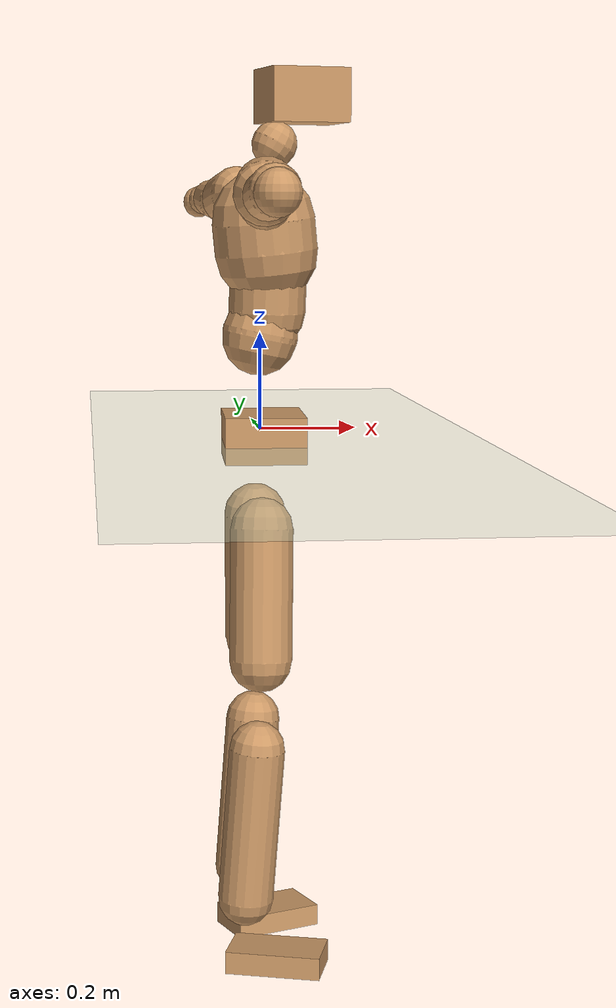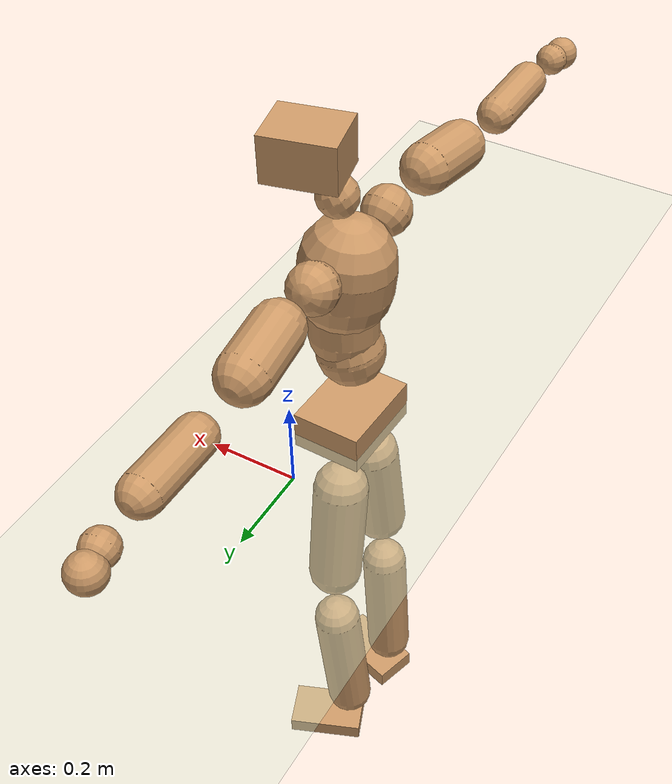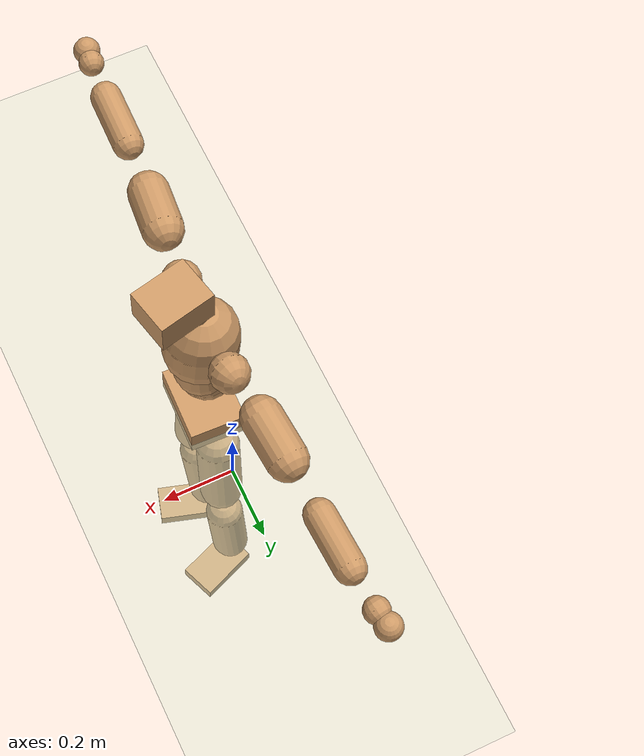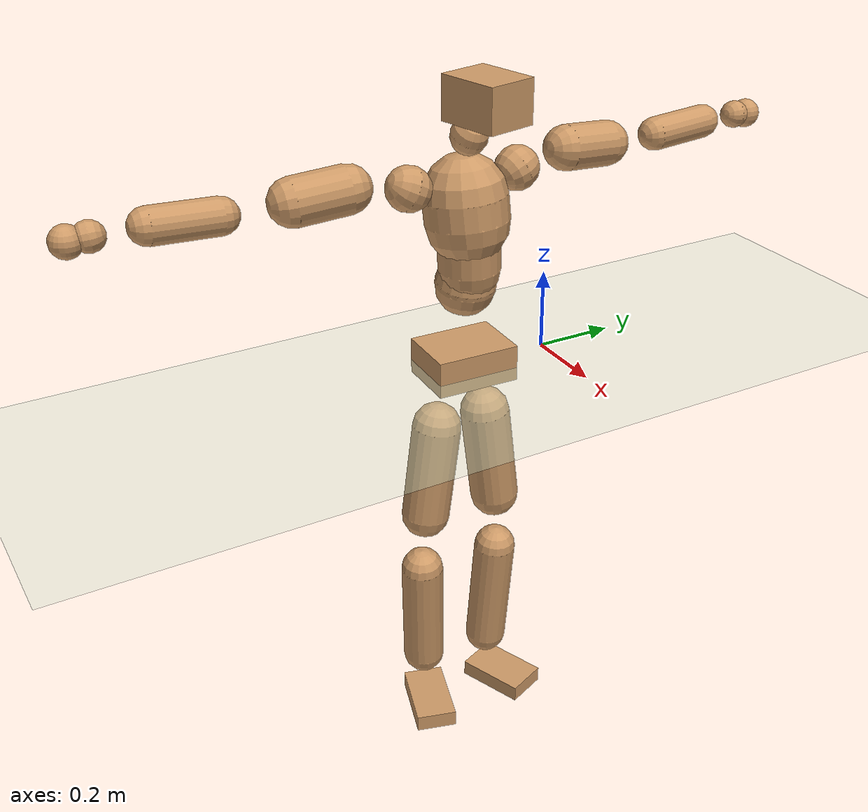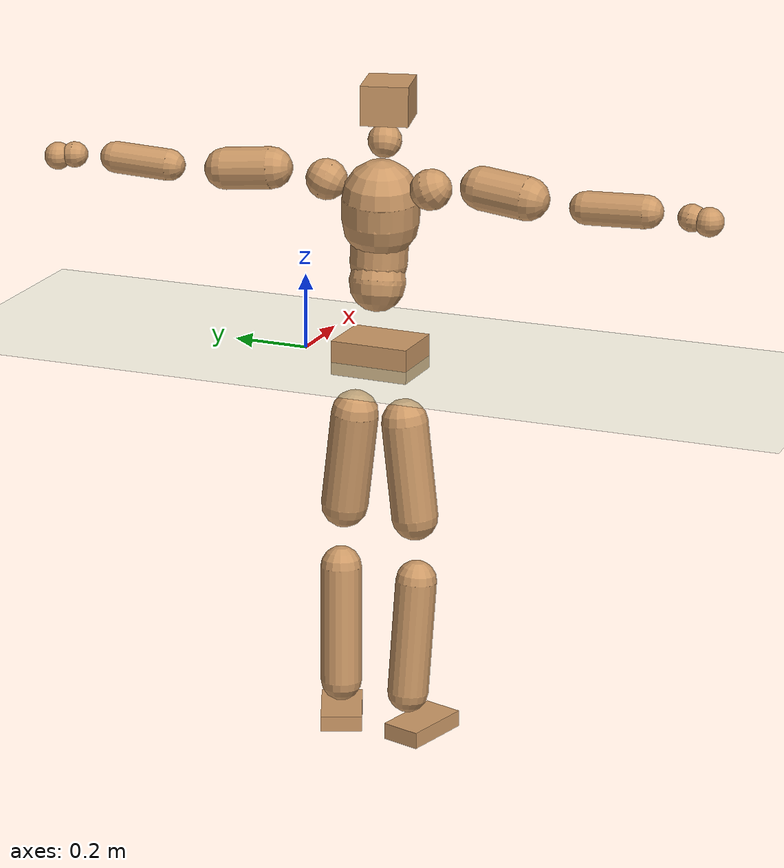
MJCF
<mujoco model="humanoid">
  <compiler coordinate="local" angle="radian"/>
  <default>
    <joint damping="0.0" armature="0.01" stiffness="0.0" limited="true"/>
    <geom conaffinity="1" condim="3" contype="7" margin="0.001" rgba="0.8 0.6 .4 1"/>
  </default>
  <asset>
    <texture type="skybox" builtin="gradient" rgb1=".4 .5 .6" rgb2="0 0 0" width="100" height="100"/>
    <texture builtin="flat" height="1278" mark="cross" markrgb="1 1 1" name="texgeom" random="0.01" rgb1="0.8 0.6 0.4" rgb2="0.8 0.6 0.4" type="cube" width="127"/>
    <texture builtin="checker" height="100" name="texplane" rgb1="0 0 0" rgb2="0.8 0.8 0.8" type="2d" width="100"/>
    <material name="MatPlane" reflectance="0.5" shininess="1" specular="1" texrepeat="60 60" texture="texplane"/>
    <material name="geom" texture="texgeom" texuniform="true"/>
  </asset>
  <worldbody>
    <light cutoff="100" diffuse="1 1 1" dir="-0 0 -1.3" directional="true" exponent="1" pos="0 0 1.3" specular=".1 .1 .1"/>
    <geom conaffinity="1" condim="3" name="floor" pos="0 0 0" rgba="0.8 0.9 0.8 1" size="100 100 .2" type="plane" material="MatPlane"/>
    <body name="Pelvis" pos="-0.0016 -0.2171 0.0186">
      <freejoint name="Pelvis"/>
      <geom type="box" contype="1" conaffinity="1" density="5359.374774" pos="-0.0127 0.0005 -0.0088" size="0.0791 0.1052 0.0456" quat="0.9998 0.0000 0.0000 -0.0180" name="Pelvis"/>
      <body name="L_Hip" pos="-0.0237 0.0576 -0.0837">
        <joint name="L_Hip_x" type="hinge" pos="0 0 0" axis="1 0 0" stiffness="1600" damping="160" armature="0.02" range="-180.0000 180.0000"/>
        <joint name="L_Hip_y" type="hinge" pos="0 0 0" axis="0 1 0" stiffness="1600" damping="160" armature="0.02" range="-180.0000 180.0000"/>
        <joint name="L_Hip_z" type="hinge" pos="0 0 0" axis="0 0 1" stiffness="1600" damping="160" armature="0.02" range="-180.0000 180.0000"/>
        <geom type="capsule" contype="1" conaffinity="1" density="2040.816327" size="0.0629" fromto="0.0012 0.0111 -0.0923 0.0047 0.0423 -0.3515" name="L_Hip"/>
        <body name="L_Knee" pos="0.006 0.0534 -0.4438">
          <joint name="L_Knee_x" type="hinge" pos="0 0 0" axis="1 0 0" stiffness="1600" damping="160" armature="0.02" range="-180.0000 180.0000"/>
          <joint name="L_Knee_y" type="hinge" pos="0 0 0" axis="0 1 0" stiffness="1600" damping="160" armature="0.02" range="-180.0000 180.0000"/>
          <joint name="L_Knee_z" type="hinge" pos="0 0 0" axis="0 0 1" stiffness="1600" damping="160" armature="0.02" range="-180.0000 180.0000"/>
          <geom type="capsule" contype="1" conaffinity="1" density="1234.567901" size="0.0554" fromto="-0.0066 -0.0025 -0.0851 -0.0314 -0.0121 -0.4032" name="L_Knee"/>
          <body name="L_Ankle" pos="-0.0381 -0.0146 -0.4883">
            <joint name="L_Ankle_x" type="hinge" pos="0 0 0" axis="1 0 0" stiffness="1600" damping="160" armature="0.02" range="-180.0000 180.0000"/>
            <joint name="L_Ankle_y" type="hinge" pos="0 0 0" axis="0 1 0" stiffness="1600" damping="160" armature="0.02" range="-180.0000 180.0000"/>
            <joint name="L_Ankle_z" type="hinge" pos="0 0 0" axis="0 0 1" stiffness="1600" damping="160" armature="0.02" range="-180.0000 180.0000"/>
            <geom type="box" contype="1" conaffinity="1" density="999.999988" pos="0.0630 0.0248 -0.0333" size="0.0912 0.0558 0.0218" quat="0.9824 0.0000 0.0000 0.1867" name="L_Ankle"/>
            <body name="L_Toe" pos="0.1259 0.0496 -0.0665">
              <joint name="L_Toe_x" type="hinge" pos="0 0 0" axis="1 0 0" stiffness="1000" damping="100" armature="0.02" range="-180.0000 180.0000"/>
              <joint name="L_Toe_y" type="hinge" pos="0 0 0" axis="0 1 0" stiffness="1000" damping="100" armature="0.02" range="-180.0000 180.0000"/>
              <joint name="L_Toe_z" type="hinge" pos="0 0 0" axis="0 0 1" stiffness="1000" damping="100" armature="0.02" range="-180.0000 180.0000"/>
              <geom type="box" contype="1" conaffinity="1" density="7741240.751379" pos="0.0000 0.0000 0.0341" size="0.0011 0.0026 0.0011" quat="0.9817 0.0000 0.0000 0.1907" name="L_Toe"/>
            </body>
          </body>
        </body>
      </body>
      <body name="R_Hip" pos="-0.0201 -0.0603 -0.0923">
        <joint name="R_Hip_x" type="hinge" pos="0 0 0" axis="1 0 0" stiffness="1600" damping="160" armature="0.02" range="-180.0000 180.0000"/>
        <joint name="R_Hip_y" type="hinge" pos="0 0 0" axis="0 1 0" stiffness="1600" damping="160" armature="0.02" range="-180.0000 180.0000"/>
        <joint name="R_Hip_z" type="hinge" pos="0 0 0" axis="0 0 1" stiffness="1600" damping="160" armature="0.02" range="-180.0000 180.0000"/>
        <geom type="capsule" contype="1" conaffinity="1" density="2040.816327" size="0.062" fromto="-0.0020 -0.0112 -0.0913 -0.0076 -0.0429 -0.3493" name="R_Hip"/>
        <body name="R_Knee" pos="-0.0095 -0.0541 -0.4406">
          <joint name="R_Knee_x" type="hinge" pos="0 0 0" axis="1 0 0" stiffness="1600" damping="160" armature="0.02" range="-180.0000 180.0000"/>
          <joint name="R_Knee_y" type="hinge" pos="0 0 0" axis="0 1 0" stiffness="1600" damping="160" armature="0.02" range="-180.0000 180.0000"/>
          <joint name="R_Knee_z" type="hinge" pos="0 0 0" axis="0 0 1" stiffness="1600" damping="160" armature="0.02" range="-180.0000 180.0000"/>
          <geom type="capsule" contype="1" conaffinity="1" density="1234.567901" size="0.0553" fromto="-0.0061 0.0036 -0.0850 -0.0284 0.0170 -0.3970" name="R_Knee"/>
          <body name="R_Ankle" pos="-0.0345 0.0206 -0.4821">
            <joint name="R_Ankle_x" type="hinge" pos="0 0 0" axis="1 0 0" stiffness="1600" damping="160" armature="0.02" range="-180.0000 180.0000"/>
            <joint name="R_Ankle_y" type="hinge" pos="0 0 0" axis="0 1 0" stiffness="1600" damping="160" armature="0.02" range="-180.0000 180.0000"/>
            <joint name="R_Ankle_z" type="hinge" pos="0 0 0" axis="0 0 1" stiffness="1600" damping="160" armature="0.02" range="-180.0000 180.0000"/>
            <geom type="box" contype="1" conaffinity="1" density="1000.000036" pos="0.0676 -0.0202 -0.0353" size="0.095 0.0535 0.0226" quat="0.9894 0.0000 0.0000 -0.1450" name="R_Ankle"/>
            <body name="R_Toe" pos="0.1352 -0.0405 -0.0706">
              <joint name="R_Toe_x" type="hinge" pos="0 0 0" axis="1 0 0" stiffness="1000" damping="100" armature="0.02" range="-180.0000 180.0000"/>
              <joint name="R_Toe_y" type="hinge" pos="0 0 0" axis="0 1 0" stiffness="1000" damping="100" armature="0.02" range="-180.0000 180.0000"/>
              <joint name="R_Toe_z" type="hinge" pos="0 0 0" axis="0 0 1" stiffness="1000" damping="100" armature="0.02" range="-180.0000 180.0000"/>
              <geom type="box" contype="1" conaffinity="1" density="8312919.314448" pos="0.0000 0.0000 0.0361" size="0.0011 0.0025 0.0012" quat="0.9907 0.0000 0.0000 -0.1363" name="R_Toe"/>
            </body>
          </body>
        </body>
      </body>
      <body name="Torso" pos="-0.0324 0.0054 0.1233">
        <joint name="Torso_x" type="hinge" pos="0 0 0" axis="1 0 0" stiffness="2000" damping="200" armature="0.02" range="-180.0000 180.0000"/>
        <joint name="Torso_y" type="hinge" pos="0 0 0" axis="0 1 0" stiffness="2000" damping="200" armature="0.02" range="-180.0000 180.0000"/>
        <joint name="Torso_z" type="hinge" pos="0 0 0" axis="0 0 1" stiffness="2000" damping="200" armature="0.02" range="-180.0000 180.0000"/>
        <geom type="capsule" contype="1" conaffinity="1" density="2040.816327" size="0.0745" fromto="0.0157 0.0016 0.0728 0.0133 0.0014 0.0617" name="Torso"/>
        <body name="Spine" pos="0.029 0.003 0.1345">
          <joint name="Spine_x" type="hinge" pos="0 0 0" axis="1 0 0" stiffness="2000" damping="200" armature="0.02" range="-180.0000 180.0000"/>
          <joint name="Spine_y" type="hinge" pos="0 0 0" axis="0 1 0" stiffness="2000" damping="200" armature="0.02" range="-180.0000 180.0000"/>
          <joint name="Spine_z" type="hinge" pos="0 0 0" axis="0 0 1" stiffness="2000" damping="200" armature="0.02" range="-180.0000 180.0000"/>
          <geom type="capsule" contype="1" conaffinity="1" density="2040.816327" size="0.0755" fromto="0.0023 -0.0037 0.0754 -0.0007 0.0011 -0.0225" name="Spine"/>
          <body name="Chest" pos="0.0016 -0.0026 0.0529">
            <joint name="Chest_x" type="hinge" pos="0 0 0" axis="1 0 0" stiffness="2000" damping="200" armature="0.02" range="-180.0000 180.0000"/>
            <joint name="Chest_y" type="hinge" pos="0 0 0" axis="0 1 0" stiffness="2000" damping="200" armature="0.02" range="-180.0000 180.0000"/>
            <joint name="Chest_z" type="hinge" pos="0 0 0" axis="0 0 1" stiffness="2000" damping="200" armature="0.02" range="-180.0000 180.0000"/>
            <geom type="capsule" contype="1" conaffinity="1" density="2040.816327" size="0.1013" fromto="-0.0101 -0.0056 0.1006 -0.0041 -0.0023 0.0406" name="Chest"/>
            <body name="Neck" pos="-0.0155 -0.0135 0.2019">
              <joint name="Neck_x" type="hinge" pos="0 0 0" axis="1 0 0" stiffness="1000" damping="100" armature="0.02" range="-180.0000 180.0000"/>
              <joint name="Neck_y" type="hinge" pos="0 0 0" axis="0 1 0" stiffness="1000" damping="100" armature="0.02" range="-180.0000 180.0000"/>
              <joint name="Neck_z" type="hinge" pos="0 0 0" axis="0 0 1" stiffness="1000" damping="100" armature="0.02" range="-180.0000 180.0000"/>
              <geom type="capsule" contype="1" conaffinity="1" density="1000" size="0.0442" fromto="0.0263 0.0053 0.0447 0.0273 0.0055 0.0464" name="Neck"/>
              <body name="Head" pos="0.0537 0.0108 0.0912">
                <joint name="Head_x" type="hinge" pos="0 0 0" axis="1 0 0" stiffness="1000" damping="100" armature="0.02" range="-180.0000 180.0000"/>
                <joint name="Head_y" type="hinge" pos="0 0 0" axis="0 1 0" stiffness="1000" damping="100" armature="0.02" range="-180.0000 180.0000"/>
                <joint name="Head_z" type="hinge" pos="0 0 0" axis="0 0 1" stiffness="1000" damping="100" armature="0.02" range="-180.0000 180.0000"/>
                <geom type="box" contype="1" conaffinity="1" density="2250.00014" pos="0.0278 0.0064 0.0466" size="0.0782 0.0623 0.0518" quat="0.9936 0.0000 0.0000 0.1129" name="Head"/>
              </body>
            </body>
            <body name="L_Thorax" pos="-0.0114 0.0778 0.1118">
              <joint name="L_Thorax_x" type="hinge" pos="0 0 0" axis="1 0 0" stiffness="1000" damping="100" armature="0.02" range="-180.0000 180.0000"/>
              <joint name="L_Thorax_y" type="hinge" pos="0 0 0" axis="0 1 0" stiffness="1000" damping="100" armature="0.02" range="-180.0000 180.0000"/>
              <joint name="L_Thorax_z" type="hinge" pos="0 0 0" axis="0 0 1" stiffness="1000" damping="100" armature="0.02" range="-180.0000 180.0000"/>
              <geom type="capsule" contype="1" conaffinity="1" density="1000" size="0.0537" fromto="-0.0092 0.0614 0.0270 -0.0094 0.0632 0.0278" name="L_Thorax"/>
              <body name="L_Shoulder" pos="-0.0186 0.1247 0.0547">
                <joint name="L_Shoulder_x" type="hinge" pos="0 0 0" axis="1 0 0" stiffness="1000" damping="100" armature="0.02" range="-720.0000 720.0000"/>
                <joint name="L_Shoulder_y" type="hinge" pos="0 0 0" axis="0 1 0" stiffness="1000" damping="100" armature="0.02" range="-720.0000 720.0000"/>
                <joint name="L_Shoulder_z" type="hinge" pos="0 0 0" axis="0 0 1" stiffness="1000" damping="100" armature="0.02" range="-720.0000 720.0000"/>
                <geom type="capsule" contype="1" conaffinity="1" density="1000" size="0.0553" fromto="-0.0072 0.0847 -0.0074 -0.0178 0.2098 -0.0183" name="L_Shoulder"/>
                <body name="L_Elbow" pos="-0.025 0.2945 -0.0256">
                  <joint name="L_Elbow_x" type="hinge" pos="0 0 0" axis="1 0 0" stiffness="1000" damping="100" armature="0.02" range="-720.0000 720.0000"/>
                  <joint name="L_Elbow_y" type="hinge" pos="0 0 0" axis="0 1 0" stiffness="1000" damping="100" armature="0.02" range="-720.0000 720.0000"/>
                  <joint name="L_Elbow_z" type="hinge" pos="0 0 0" axis="0 0 1" stiffness="1000" damping="100" armature="0.02" range="-720.0000 720.0000"/>
                  <geom type="capsule" contype="1" conaffinity="1" density="1000" size="0.0416" fromto="-0.0022 0.0715 0.0039 -0.0068 0.2239 0.0121" name="L_Elbow"/>
                  <body name="L_Wrist" pos="-0.0089 0.2953 0.016">
                    <joint name="L_Wrist_x" type="hinge" pos="0 0 0" axis="1 0 0" stiffness="600" damping="60" armature="0.02" range="-180.0000 180.0000"/>
                    <joint name="L_Wrist_y" type="hinge" pos="0 0 0" axis="0 1 0" stiffness="600" damping="60" armature="0.02" range="-180.0000 180.0000"/>
                    <joint name="L_Wrist_z" type="hinge" pos="0 0 0" axis="0 0 1" stiffness="600" damping="60" armature="0.02" range="-180.0000 180.0000"/>
                    <geom type="capsule" contype="1" conaffinity="1" density="1000" size="0.0344" fromto="-0.0082 0.0436 -0.0054 -0.0085 0.0456 -0.0056" name="L_Wrist"/>
                    <body name="L_Hand" pos="-0.0167 0.0892 -0.011">
                      <joint name="L_Hand_x" type="hinge" pos="0 0 0" axis="1 0 0" stiffness="600" damping="60" armature="0.02" range="-180.0000 180.0000"/>
                      <joint name="L_Hand_y" type="hinge" pos="0 0 0" axis="0 1 0" stiffness="600" damping="60" armature="0.02" range="-180.0000 180.0000"/>
                      <joint name="L_Hand_z" type="hinge" pos="0 0 0" axis="0 0 1" stiffness="600" damping="60" armature="0.02" range="-180.0000 180.0000"/>
                      <geom type="sphere" contype="1" conaffinity="1" density="1000" size="0.0364" pos="0.0000 0.0000 0.0000" name="L_Hand"/>
                    </body>
                  </body>
                </body>
              </body>
            </body>
            <body name="R_Thorax" pos="-0.0158 -0.088 0.1099">
              <joint name="R_Thorax_x" type="hinge" pos="0 0 0" axis="1 0 0" stiffness="1000" damping="100" armature="0.02" range="-180.0000 180.0000"/>
              <joint name="R_Thorax_y" type="hinge" pos="0 0 0" axis="0 1 0" stiffness="1000" damping="100" armature="0.02" range="-180.0000 180.0000"/>
              <joint name="R_Thorax_z" type="hinge" pos="0 0 0" axis="0 0 1" stiffness="1000" damping="100" armature="0.02" range="-180.0000 180.0000"/>
              <geom type="capsule" contype="1" conaffinity="1" density="1000" size="0.0538" fromto="-0.0035 -0.0570 0.0281 -0.0036 -0.0588 0.0290" name="R_Thorax"/>
              <body name="R_Shoulder" pos="-0.0071 -0.1157 0.0571">
                <joint name="R_Shoulder_x" type="hinge" pos="0 0 0" axis="1 0 0" stiffness="1000" damping="100" armature="0.02" range="-720.0000 720.0000"/>
                <joint name="R_Shoulder_y" type="hinge" pos="0 0 0" axis="0 1 0" stiffness="1000" damping="100" armature="0.02" range="-720.0000 720.0000"/>
                <joint name="R_Shoulder_z" type="hinge" pos="0 0 0" axis="0 0 1" stiffness="1000" damping="100" armature="0.02" range="-720.0000 720.0000"/>
                <geom type="capsule" contype="1" conaffinity="1" density="1000" size="0.0566" fromto="-0.0094 -0.0857 -0.0078 -0.0232 -0.2112 -0.0192" name="R_Shoulder"/>
                <body name="R_Elbow" pos="-0.0326 -0.2969 -0.027">
                  <joint name="R_Elbow_x" type="hinge" pos="0 0 0" axis="1 0 0" stiffness="1000" damping="100" armature="0.02" range="-720.0000 720.0000"/>
                  <joint name="R_Elbow_y" type="hinge" pos="0 0 0" axis="0 1 0" stiffness="1000" damping="100" armature="0.02" range="-720.0000 720.0000"/>
                  <joint name="R_Elbow_z" type="hinge" pos="0 0 0" axis="0 0 1" stiffness="1000" damping="100" armature="0.02" range="-720.0000 720.0000"/>
                  <geom type="capsule" contype="1" conaffinity="1" density="1000" size="0.0425" fromto="-0.0018 -0.0725 0.0029 -0.0058 -0.2304 0.0091" name="R_Elbow"/>
                  <body name="R_Wrist" pos="-0.0076 -0.3029 0.012">
                    <joint name="R_Wrist_x" type="hinge" pos="0 0 0" axis="1 0 0" stiffness="600" damping="60" armature="0.02" range="-180.0000 180.0000"/>
                    <joint name="R_Wrist_y" type="hinge" pos="0 0 0" axis="0 1 0" stiffness="600" damping="60" armature="0.02" range="-180.0000 180.0000"/>
                    <joint name="R_Wrist_z" type="hinge" pos="0 0 0" axis="0 0 1" stiffness="600" damping="60" armature="0.02" range="-180.0000 180.0000"/>
                    <geom type="capsule" contype="1" conaffinity="1" density="1000" size="0.035" fromto="-0.0054 -0.0445 -0.0044 -0.0057 -0.0465 -0.0046" name="R_Wrist"/>
                    <body name="R_Hand" pos="-0.0111 -0.091 -0.0089">
                      <joint name="R_Hand_x" type="hinge" pos="0 0 0" axis="1 0 0" stiffness="600" damping="60" armature="0.02" range="-180.0000 180.0000"/>
                      <joint name="R_Hand_y" type="hinge" pos="0 0 0" axis="0 1 0" stiffness="600" damping="60" armature="0.02" range="-180.0000 180.0000"/>
                      <joint name="R_Hand_z" type="hinge" pos="0 0 0" axis="0 0 1" stiffness="600" damping="60" armature="0.02" range="-180.0000 180.0000"/>
                      <geom type="sphere" contype="1" conaffinity="1" density="1000" size="0.0368" pos="0.0000 0.0000 0.0000" name="R_Hand"/>
                    </body>
                  </body>
                </body>
              </body>
            </body>
          </body>
        </body>
      </body>
    </body>
  </worldbody>
  <actuator>
    <motor name="L_Hip_x" joint="L_Hip_x" gear="500"/>
    <motor name="L_Hip_y" joint="L_Hip_y" gear="500"/>
    <motor name="L_Hip_z" joint="L_Hip_z" gear="500"/>
    <motor name="L_Knee_x" joint="L_Knee_x" gear="500"/>
    <motor name="L_Knee_y" joint="L_Knee_y" gear="500"/>
    <motor name="L_Knee_z" joint="L_Knee_z" gear="500"/>
    <motor name="L_Ankle_x" joint="L_Ankle_x" gear="500"/>
    <motor name="L_Ankle_y" joint="L_Ankle_y" gear="500"/>
    <motor name="L_Ankle_z" joint="L_Ankle_z" gear="500"/>
    <motor name="L_Toe_x" joint="L_Toe_x" gear="500"/>
    <motor name="L_Toe_y" joint="L_Toe_y" gear="500"/>
    <motor name="L_Toe_z" joint="L_Toe_z" gear="500"/>
    <motor name="R_Hip_x" joint="R_Hip_x" gear="500"/>
    <motor name="R_Hip_y" joint="R_Hip_y" gear="500"/>
    <motor name="R_Hip_z" joint="R_Hip_z" gear="500"/>
    <motor name="R_Knee_x" joint="R_Knee_x" gear="500"/>
    <motor name="R_Knee_y" joint="R_Knee_y" gear="500"/>
    <motor name="R_Knee_z" joint="R_Knee_z" gear="500"/>
    <motor name="R_Ankle_x" joint="R_Ankle_x" gear="500"/>
    <motor name="R_Ankle_y" joint="R_Ankle_y" gear="500"/>
    <motor name="R_Ankle_z" joint="R_Ankle_z" gear="500"/>
    <motor name="R_Toe_x" joint="R_Toe_x" gear="500"/>
    <motor name="R_Toe_y" joint="R_Toe_y" gear="500"/>
    <motor name="R_Toe_z" joint="R_Toe_z" gear="500"/>
    <motor name="Torso_x" joint="Torso_x" gear="500"/>
    <motor name="Torso_y" joint="Torso_y" gear="500"/>
    <motor name="Torso_z" joint="Torso_z" gear="500"/>
    <motor name="Spine_x" joint="Spine_x" gear="500"/>
    <motor name="Spine_y" joint="Spine_y" gear="500"/>
    <motor name="Spine_z" joint="Spine_z" gear="500"/>
    <motor name="Chest_x" joint="Chest_x" gear="500"/>
    <motor name="Chest_y" joint="Chest_y" gear="500"/>
    <motor name="Chest_z" joint="Chest_z" gear="500"/>
    <motor name="Neck_x" joint="Neck_x" gear="500"/>
    <motor name="Neck_y" joint="Neck_y" gear="500"/>
    <motor name="Neck_z" joint="Neck_z" gear="500"/>
    <motor name="Head_x" joint="Head_x" gear="500"/>
    <motor name="Head_y" joint="Head_y" gear="500"/>
    <motor name="Head_z" joint="Head_z" gear="500"/>
    <motor name="L_Thorax_x" joint="L_Thorax_x" gear="500"/>
    <motor name="L_Thorax_y" joint="L_Thorax_y" gear="500"/>
    <motor name="L_Thorax_z" joint="L_Thorax_z" gear="500"/>
    <motor name="L_Shoulder_x" joint="L_Shoulder_x" gear="500"/>
    <motor name="L_Shoulder_y" joint="L_Shoulder_y" gear="500"/>
    <motor name="L_Shoulder_z" joint="L_Shoulder_z" gear="500"/>
    <motor name="L_Elbow_x" joint="L_Elbow_x" gear="500"/>
    <motor name="L_Elbow_y" joint="L_Elbow_y" gear="500"/>
    <motor name="L_Elbow_z" joint="L_Elbow_z" gear="500"/>
    <motor name="L_Wrist_x" joint="L_Wrist_x" gear="500"/>
    <motor name="L_Wrist_y" joint="L_Wrist_y" gear="500"/>
    <motor name="L_Wrist_z" joint="L_Wrist_z" gear="500"/>
    <motor name="L_Hand_x" joint="L_Hand_x" gear="500"/>
    <motor name="L_Hand_y" joint="L_Hand_y" gear="500"/>
    <motor name="L_Hand_z" joint="L_Hand_z" gear="500"/>
    <motor name="R_Thorax_x" joint="R_Thorax_x" gear="500"/>
    <motor name="R_Thorax_y" joint="R_Thorax_y" gear="500"/>
    <motor name="R_Thorax_z" joint="R_Thorax_z" gear="500"/>
    <motor name="R_Shoulder_x" joint="R_Shoulder_x" gear="500"/>
    <motor name="R_Shoulder_y" joint="R_Shoulder_y" gear="500"/>
    <motor name="R_Shoulder_z" joint="R_Shoulder_z" gear="500"/>
    <motor name="R_Elbow_x" joint="R_Elbow_x" gear="500"/>
    <motor name="R_Elbow_y" joint="R_Elbow_y" gear="500"/>
    <motor name="R_Elbow_z" joint="R_Elbow_z" gear="500"/>
    <motor name="R_Wrist_x" joint="R_Wrist_x" gear="500"/>
    <motor name="R_Wrist_y" joint="R_Wrist_y" gear="500"/>
    <motor name="R_Wrist_z" joint="R_Wrist_z" gear="500"/>
    <motor name="R_Hand_x" joint="R_Hand_x" gear="500"/>
    <motor name="R_Hand_y" joint="R_Hand_y" gear="500"/>
    <motor name="R_Hand_z" joint="R_Hand_z" gear="500"/>
  </actuator>
  <contact>
    <exclude body1="Torso" body2="Chest"/>
    <exclude body1="Head" body2="Chest"/>
    <exclude body1="R_Knee" body2="R_Toe"/>
    <exclude body1="R_Knee" body2="L_Ankle"/>
    <exclude body1="R_Knee" body2="L_Toe"/>
    <exclude body1="L_Knee" body2="L_Toe"/>
    <exclude body1="L_Knee" body2="R_Ankle"/>
    <exclude body1="L_Knee" body2="R_Toe"/>
    <exclude body1="L_Shoulder" body2="Chest"/>
    <exclude body1="R_Shoulder" body2="Chest"/>
  </contact>
  <sensor/>
  <size njmax="700" nconmax="700"/>
</mujoco>
